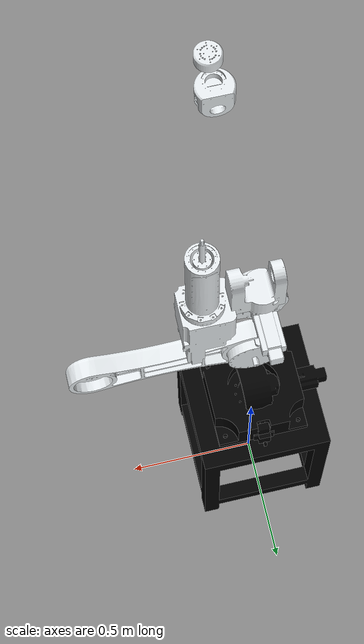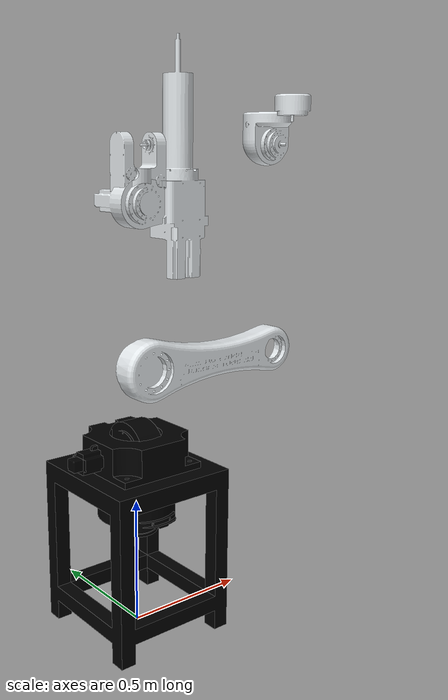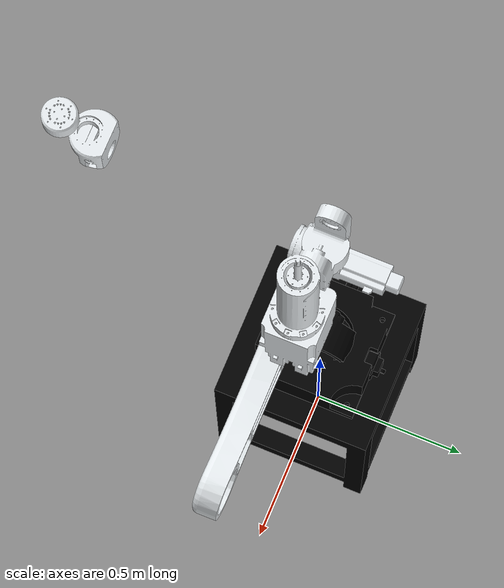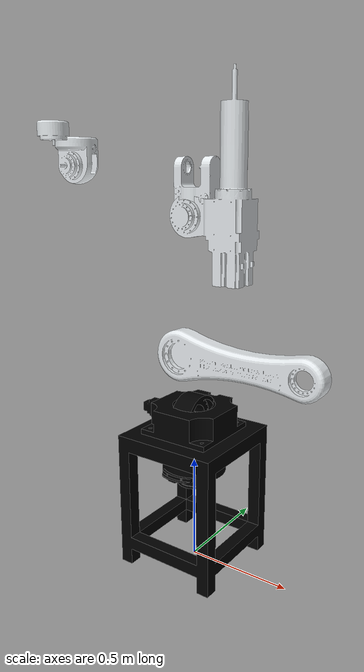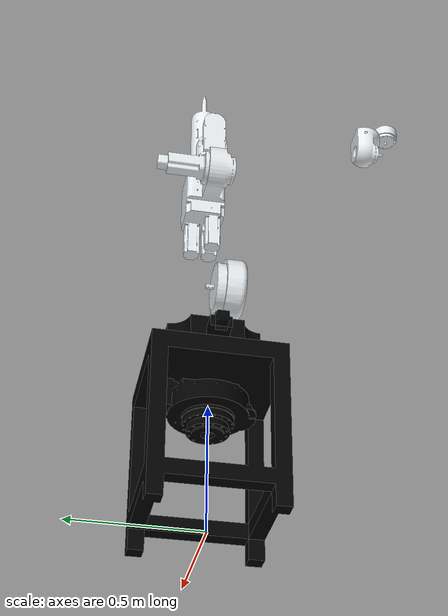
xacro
<?xml version="1.0"?>
<robot name="FUM6R">

  <link name= "world" />

  <joint name= "worldJ0" type="fixed">
      <origin xyz="0 0 0.65" rpy="0 0 0" />
      <parent
      link="world" />
    <child
      link="Table" />
    <dynamics damping="10" friction="1.0"/>
  </joint>

  <link name="Table">
    <inertial>
      <origin
        xyz="-1.8531E-16 -0.20987 4.0835E-17"
        rpy="0 0 0" />
      <mass
        value="31.324" />
      <inertia
        ixx="2.5002"
        ixy="-3.9398E-16"
        ixz="1.8927E-16"
        iyy="1.875"
        iyz="-7.6572E-16"
        izz="2.5002" />
    </inertial>
    <visual>
      <origin
        xyz="0 0 0"
        rpy="0 0 0" />
      <geometry>
        <mesh
          filename="/home/nargas/FUM6R-WS/src/Ros2ControlBringingUp/meshes/Table.STL" />
      </geometry>
      <material name="Black">
          <color rgba="0 0 0 1"/>
      </material>
    </visual>
    <collision>
      <origin
        xyz="0 0 0"
        rpy="0 0 0" />
      <geometry>
        <mesh
          filename="/home/nargas/FUM6R-WS/src/Ros2ControlBringingUp/meshes/Table.STL" />
      </geometry>
    </collision>
  </link>

  <joint name="fixingtable"
    type="fixed">
    <origin
      xyz="0 0 0"
      rpy="0 0 -1.5708" />
    <parent
      link="Table" />
    <child
      link="6RL0" />
    <axis
      xyz="0 0 0" />
  </joint>

  <link name="6RL0">
    <inertial>
      <origin xyz="0.003 0 -0.005" rpy="0 0 0" />
      <mass value="31.781" />
      <inertia
        ixx="0.376"
        ixy="0"
        ixz="-0.001"
        iyy="0.364"
        iyz="0"
        izz="0.65" />
    </inertial>
    <visual>
      <origin
        xyz="0 0 0"
        rpy="0 0 0" />
      <geometry>
        <mesh
          filename="/home/nargas/FUM6R-WS/src/Ros2ControlBringingUp/meshes/6RL0.STL" />
      </geometry>
      <material name="Black">
          <color rgba="0 0 0 1"/>
      </material>
    </visual>
    <collision>
      <origin
        xyz="0 0 0"
        rpy="0 0 0" />
      <geometry>
        <mesh
          filename="/home/nargas/FUM6R-WS/src/Ros2ControlBringingUp/meshes/6RL0.STL" />
      </geometry>
    </collision>
  </link>
  <link name="6RL1">
    <inertial>
      <origin
        xyz="-0.016 -0.02 0.195"
        rpy="0 0 0" />
      <mass
        value="29.923" />
      <inertia
        ixx="0.557"
        ixy="-0.009"
        ixz="-0.018"
        iyy="0.601"
        iyz="-0.076"
        izz="0.362" />
    </inertial>
    <visual>
      <origin
        xyz="0 0 0"
        rpy="0 0 0" />
      <geometry>
        <mesh
          filename="/home/nargas/FUM6R-WS/src/Ros2ControlBringingUp/meshes/6RL1.STL" />
      </geometry>
      <material name="Black">
          <color rgba="0 0 0 1"/>
      </material>
    </visual>
    <collision>
      <origin
        xyz="0 0 0"
        rpy="0 0 0" />
      <geometry>
        <mesh
          filename="/home/nargas/FUM6R-WS/src/Ros2ControlBringingUp/meshes/6RL1.STL" />
      </geometry>
    </collision>
  </link>
  <joint name="6RJ1" type="revolute">
    <origin
      xyz="0 0 0.0635"
      rpy="0 0 0" />
    <parent
      link="6RL0" />
    <child
      link="6RL1" />
    <axis
      xyz="0 0 1" />
    <limit
      lower="-1.79769e+308"
      upper="1.79769e+308"
      effort="-1"
      velocity="-1" />
    <dynamics damping="10" friction="1.0"/>
  </joint>
  <link name="6RL2">
    <inertial>
      <origin
        xyz="0.183 0 0.082"
        rpy="0 0 0" />
      <mass
        value="16.89" />
      <inertia
        ixx="0.067"
        ixy="0"
        ixz="0.044"
        iyy="1"
        iyz="0"
        izz="1.034" />
    </inertial>
    <visual>
      <origin
        xyz="0 0 0"
        rpy="0 0 0" />
      <geometry>
        <mesh
          filename="/home/nargas/FUM6R-WS/src/Ros2ControlBringingUp/meshes/6RL2.STL" />
      </geometry>
      <material
        name="">
        <color
          rgba="0.89804 0.91765 0.92941 1" />
      </material>
    </visual>
    <collision>
      <origin
        xyz="0 0 0"
        rpy="0 0 0" />
      <geometry>
        <mesh
          filename="/home/nargas/FUM6R-WS/src/Ros2ControlBringingUp/meshes/6RL2.STL" />
      </geometry>
    </collision>
  </link>
  <joint name="6RJ2" type="revolute">
    <origin
      xyz="0 0 0.326"
      rpy="4.7124 -1.5708 0" />
    <parent
      link="6RL1" />
    <child
      link="6RL2" />
    <axis
      xyz="0 0 1" />
    <limit
      lower="-1.79769e+308"
      upper="1.79769e+308"
      effort="-1"
      velocity="-1" />
    <dynamics damping="10" friction="1.0"/>
  </joint>
  <link name="6RL3">
    <inertial>
      <origin
        xyz="0.128 0.002 -0.003"
        rpy="0 0 0" />
      <mass
        value="24.16" />
      <inertia
        ixx="0.618"
        ixy="-0.007"
        ixz="0.019"
        iyy="0.331"
        iyz="-0.005"
        izz="0.791" />
    </inertial>
    <visual>
      <origin
        xyz="0 0 0"
        rpy="0 0 0" />
      <geometry>
        <mesh
          filename="/home/nargas/FUM6R-WS/src/Ros2ControlBringingUp/meshes/6RL3.STL" />
      </geometry>
      <material
        name="">
        <color
          rgba="0.89804 0.91765 0.92941 1" />
      </material>
    </visual>
    <collision>
      <origin
        xyz="0 0 0"
        rpy="0 0 0" />
      <geometry>
        <mesh
          filename="/home/nargas/FUM6R-WS/src/Ros2ControlBringingUp/meshes/6RL3.STL" />
      </geometry>
    </collision>
  </link>
  <joint name="6RJ3" type="revolute">
    <origin
      xyz="0.6 0 0"
      rpy="0 0 0" />
    <parent
      link="6RL2" />
    <child
      link="6RL3" />
    <axis
      xyz="0 0 1" />
    <limit
      lower="-1.79769e+308"
      upper="1.79769e+308"
      effort="-1"
      velocity="-1" />
    <dynamics damping="10" friction="1.0"/>
  </joint>
  <link name="6RL4">
    <inertial>
      <origin
        xyz="0 0.015 0.562"
        rpy="0 0 0" />
      <mass
        value="4.742" />
      <inertia
        ixx="0.04"
        ixy="0"
        ixz="0"
        iyy="0.032"
        iyz="0.004"
        izz="0.018" />
    </inertial>
    <visual>
      <origin
        xyz="0 0 0"
        rpy="0 0 0" />
      <geometry>
        <mesh
          filename="/home/nargas/FUM6R-WS/src/Ros2ControlBringingUp/meshes/6RL4.STL" />
      </geometry>
      <material
        name="">
        <color
          rgba="0.89804 0.91765 0.92941 1" />
      </material>
    </visual>
    <collision>
      <origin
        xyz="0 0 0"
        rpy="0 0 0" />
      <geometry>
        <mesh
          filename="/home/nargas/FUM6R-WS/src/Ros2ControlBringingUp/meshes/6RL4.STL" />
      </geometry>
    </collision>
  </link>
  <joint name="6RJ4" type="revolute">
    <origin
      xyz="0.2 0 0"
      rpy="-1.5708 0 0" />
    <parent
      link="6RL3" />
    <child
      link="6RL4" />
    <axis
      xyz="0 0 1" />
    <limit
      lower="-1.79769e+308"
      upper="1.79769e+308"
      effort="-1"
      velocity="-1" />
    <dynamics damping="10" friction="1.0"/>
  </joint>
  <link name="6RL5">
    <inertial>
      <origin
        xyz="-0.003 0.02 -0.013"
        rpy="0 0 0" />
      <mass
        value="2.615" />
      <inertia
        ixx="0.007"
        ixy="0"
        ixz="0"
        iyy="0.006"
        iyz="0"
        izz="0.008" />
    </inertial>
    <visual>
      <origin
        xyz="0 0 0"
        rpy="0 0 0" />
      <geometry>
        <mesh
          filename="/home/nargas/FUM6R-WS/src/Ros2ControlBringingUp/meshes/6RL5.STL" />
      </geometry>
      <material
        name="">
        <color
          rgba="0.89804 0.91765 0.92941 1" />
      </material>
    </visual>
    <collision>
      <origin
        xyz="0 0 0"
        rpy="0 0 0" />
      <geometry>
        <mesh
          filename="/home/nargas/FUM6R-WS/src/Ros2ControlBringingUp/meshes/6RL5.STL" />
      </geometry>
    </collision>
  </link>
  <joint name="6RJ5" type="revolute">
    <origin
      xyz="0 0 0.6855"
      rpy="1.5708 0 0" />
    <parent
      link="6RL4" />
    <child
      link="6RL5" />
    <axis
      xyz="0 0 1" />
    <limit
      lower="-1.79769e+308"
      upper="1.79769e+308"
      effort="-1"
      velocity="-1" />
    <dynamics damping="10" friction="1.0"/>
  </joint>
  <link name="6RL6">
    <inertial>
      <origin
        xyz="0 0 0.029"
        rpy="0 0 0" />
      <mass
        value="0.955" />
      <inertia
        ixx="0.001"
        ixy="0"
        ixz="0"
        iyy="0.001"
        iyz="0"
        izz="0.001" />
    </inertial>
    <visual>
      <origin
        xyz="0 0 0"
        rpy="0 0 0" />
      <geometry>
        <mesh
          filename="/home/nargas/FUM6R-WS/src/Ros2ControlBringingUp/meshes/6RL6.STL" />
      </geometry>
      <material
        name="">
        <color
          rgba="0.89804 0.91765 0.92941 1" />
      </material>
    </visual>
    <collision>
      <origin
        xyz="0 0 0"
        rpy="0 0 0" />
      <geometry>
        <mesh
          filename="/home/nargas/FUM6R-WS/src/Ros2ControlBringingUp/meshes/6RL6.STL" />
      </geometry>
    </collision>
  </link>
  <joint name="6RJ6" type="revolute">
    <origin
      xyz="0 0.079 0"
      rpy="-1.5708 0 0" />
    <parent
      link="6RL5" />
    <child
      link="6RL6" />
    <axis
      xyz="0 0 1" />
    <limit
      lower="-1.79769e+308"
      upper="1.79769e+308"
      effort="-1"
      velocity="-1" />
    <dynamics damping="10" friction="1.0"/>
  </joint>

  <gazebo reference="Table">
    <material>Gazebo/FlatBlack</material>
  </gazebo>

  <gazebo reference="6RL0">
    <material>Gazebo/FlatBlack</material>
  </gazebo>

  <gazebo reference="6RL1">
    <material>Gazebo/FlatBlack</material>
  </gazebo>

  <gazebo reference="6RL2">
    <material>Gazebo/Orange</material>
  </gazebo>

  <gazebo reference="6RL3">
    <material>Gazebo/Orange</material>
  </gazebo>

  <gazebo reference="6RL4">
    <material>Gazebo/FlatBlack</material>
  </gazebo>

  <gazebo reference="6RL5">
    <material>Gazebo/FlatBlack</material>
  </gazebo>

  <gazebo reference="6RL6">
    <material>Gazebo/FlatBlack</material>
  </gazebo>

</robot>
